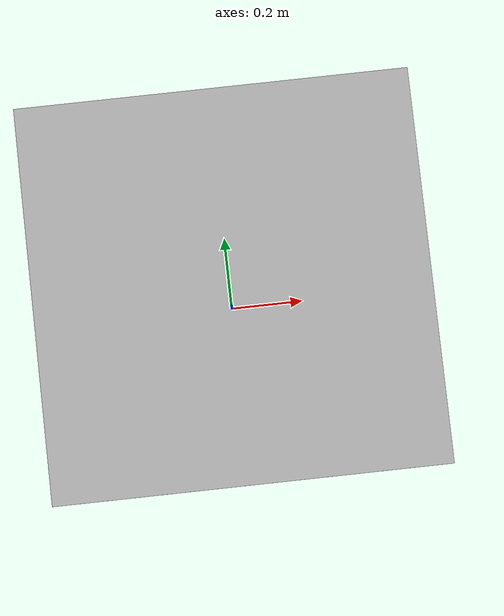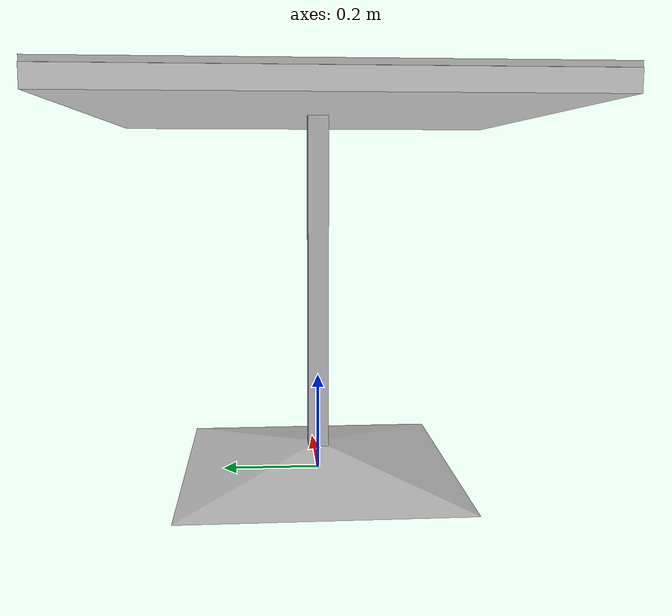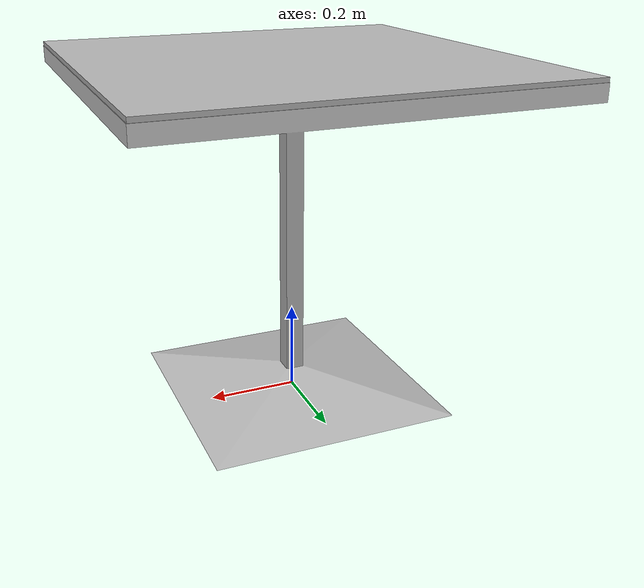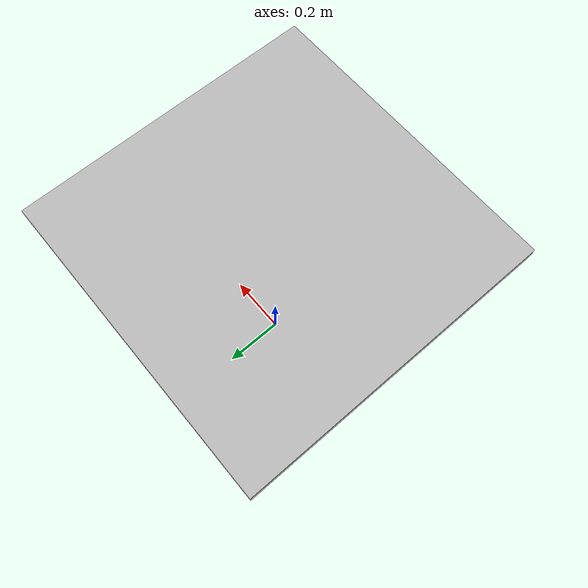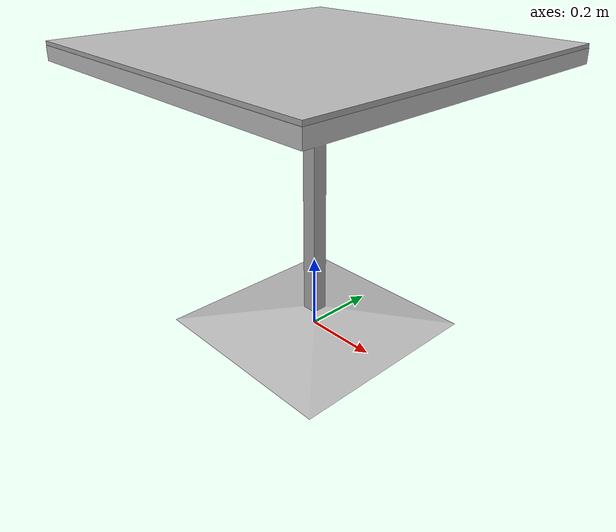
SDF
<?xml version="1.0" ?>
<sdf version="1.5">
  <model name="cafe_table">
    <static>true</static>
    <link name="link">
      <collision name="surface">
        <pose>0 0 0.755 0 0 0</pose>
        <geometry>
          <box>
            <size>0.913 0.913 0.04</size>
          </box>
        </geometry>
      </collision>

      <collision name="column">
        <pose>0 0 0.37 0 0 0</pose>
        <geometry>
          <box>
            <size>0.042 0.042 0.74</size>
          </box>
        </geometry>
      </collision>

      <collision name="base">
        <pose>0 0 0.02 0 0 0</pose>
        <geometry>
          <box>
            <size>0.56 0.56 0.04</size>
          </box>
        </geometry>
      </collision>

      <visual name="visual">
        <geometry>
          <mesh>
            <uri>model://cafe_table/meshes/cafe_table.dae</uri>
          </mesh>
        </geometry>

      </visual>
    </link>

    <link name="picture">
      <visual name="visual">
        <cast_shadows>false</cast_shadows>
        <pose frame=''>0 0 0.78 0 -0 0</pose>
        <geometry>
         <box>
            <size>0.913 0.913 0.01</size>
          </box>
        </geometry>
        <material>
          <script>
            <uri>model://cafe_table/materials/scripts</uri>
            <uri>model://cafe_table/materials/textures</uri>
            <name>Cube/logo_ground</name>
          </script>
        </material>
      </visual>
    </link>
  </model>
</sdf>
